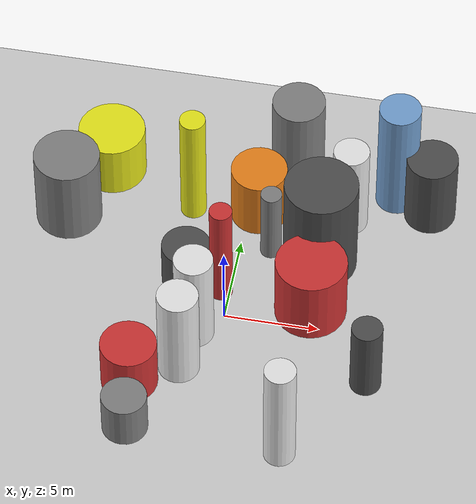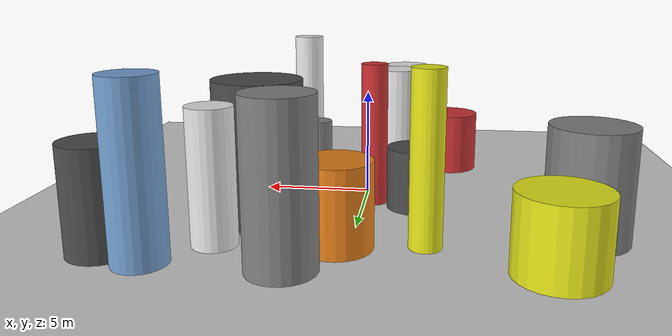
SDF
<?xml version='1.0'?>
<sdf version='1.6'>
  <world name='default'>
    <!-- Sun light -->
    <light name='sun' type='directional'>
      <cast_shadows>1</cast_shadows>
      <pose>0 0 10 0 0 0</pose>
      <diffuse>0.8 0.8 0.8 1</diffuse>
      <specular>0.2 0.2 0.2 1</specular>
      <attenuation>
        <range>1000</range>
        <constant>0.9</constant>
        <linear>0.01</linear>
        <quadratic>0.001</quadratic>
      </attenuation>
      <direction>-0.5 0.1 -0.9</direction>
    </light>

    <!-- Ground plane -->
    <model name='ground_plane'>
      <static>1</static>
      <link name='link'>
        <collision name='collision'>
          <geometry>
            <plane>
              <normal>0 0 1</normal>
              <size>100 100</size>
            </plane>
          </geometry>
          <surface>
            <contact>
              <collide_bitmask>65535</collide_bitmask>
              <ode/>
            </contact>
            <friction>
              <ode>
                <mu>100</mu>
                <mu2>50</mu2>
              </ode>
              <torsional><ode/></torsional>
            </friction>
            <bounce/>
          </surface>
          <max_contacts>10</max_contacts>
        </collision>
        <visual name='visual'>
          <cast_shadows>0</cast_shadows>
          <geometry>
            <plane>
              <normal>0 0 1</normal>
              <size>100 100</size>
            </plane>
          </geometry>
          <material>
            <script>
              <uri>file://media/materials/scripts/gazebo.material</uri>
              <n>Gazebo/Grey</n>
            </script>
          </material>
        </visual>
      </link>
    </model>

    <!-- Environment -->
    <magnetic_field>6e-06 2.3e-05 -4.2e-05</magnetic_field>
    <atmosphere type='adiabatic'/>
    <physics name='default_physics' default='0' type='ode'>
      <gravity>0 0 -9.8</gravity>
      <max_step_size>0.004</max_step_size>
      <real_time_factor>1</real_time_factor>
      <real_time_update_rate>250</real_time_update_rate>
    </physics>
    <scene>
      <ambient>0.4 0.4 0.4 1</ambient>
      <background>0.7 0.7 0.7 1</background>
      <shadows>1</shadows>
    </scene>
    <wind/>
    <spherical_coordinates>
      <surface_model>EARTH_WGS84</surface_model>
      <latitude_deg>0</latitude_deg>
      <longitude_deg>0</longitude_deg>
      <elevation>0</elevation>
      <heading_deg>0</heading_deg>
    </spherical_coordinates>

    <!-- ============ OBSTACLES (19) ============ -->
    <model name='obs_00'>
      <static>1</static>
      <link name='link'>
        <visual name='visual'>
          <geometry>
            <cylinder>
              <radius>1.3732</radius>
              <length>4.4778</length>
            </cylinder>
          </geometry>
          <material>
            <script>
              <n>Gazebo/DarkGrey</n>
              <uri>file://media/materials/scripts/gazebo.material</uri>
            </script>
            <ambient>0.3 0.3 0.3 1</ambient>
          </material>
        </visual>
        <collision name='collision'>
          <geometry>
            <cylinder>
              <radius>1.3732</radius>
              <length>4.4778</length>
            </cylinder>
          </geometry>
          <max_contacts>10</max_contacts>
          <surface>
            <contact><ode/></contact>
            <bounce/>
            <friction>
              <ode><mu>1</mu><mu2>1</mu2></ode>
              <torsional><ode/></torsional>
            </friction>
          </surface>
        </collision>
      </link>
      <pose>9.5552 8.8777 2.2389 0 0 0.3972</pose>
    </model>

    <model name='obs_01'>
      <static>1</static>
      <link name='link'>
        <visual name='visual'>
          <geometry>
            <cylinder>
              <radius>1.3096</radius>
              <length>2.8539</length>
            </cylinder>
          </geometry>
          <material>
            <script>
              <n>Gazebo/DarkGrey</n>
              <uri>file://media/materials/scripts/gazebo.material</uri>
            </script>
            <ambient>0.3 0.3 0.3 1</ambient>
          </material>
        </visual>
        <collision name='collision'>
          <geometry>
            <cylinder>
              <radius>1.3096</radius>
              <length>2.8539</length>
            </cylinder>
          </geometry>
          <max_contacts>10</max_contacts>
          <surface>
            <contact><ode/></contact>
            <bounce/>
            <friction>
              <ode><mu>1</mu><mu2>1</mu2></ode>
              <torsional><ode/></torsional>
            </friction>
          </surface>
        </collision>
      </link>
      <pose>-2.4141 2.0592 1.4270 0 0 2.0914</pose>
    </model>

    <model name='obs_02'>
      <static>1</static>
      <link name='link'>
        <visual name='visual'>
          <geometry>
            <cylinder>
              <radius>1.7641</radius>
              <length>4.7992</length>
            </cylinder>
          </geometry>
          <material>
            <script>
              <n>Gazebo/Grey</n>
              <uri>file://media/materials/scripts/gazebo.material</uri>
            </script>
            <ambient>0.5 0.5 0.5 1</ambient>
          </material>
        </visual>
        <collision name='collision'>
          <geometry>
            <cylinder>
              <radius>1.7641</radius>
              <length>4.7992</length>
            </cylinder>
          </geometry>
          <max_contacts>10</max_contacts>
          <surface>
            <contact><ode/></contact>
            <bounce/>
            <friction>
              <ode><mu>1</mu><mu2>1</mu2></ode>
              <torsional><ode/></torsional>
            </friction>
          </surface>
        </collision>
      </link>
      <pose>-9.4757 5.3774 2.3996 0 0 0.8717</pose>
    </model>

    <model name='obs_03'>
      <static>1</static>
      <link name='link'>
        <visual name='visual'>
          <geometry>
            <cylinder>
              <radius>0.9627</radius>
              <length>5.6735</length>
            </cylinder>
          </geometry>
          <material>
            <script>
              <n>Gazebo/White</n>
              <uri>file://media/materials/scripts/gazebo.material</uri>
            </script>
            <ambient>0.9 0.9 0.9 1</ambient>
          </material>
        </visual>
        <collision name='collision'>
          <geometry>
            <cylinder>
              <radius>0.9627</radius>
              <length>5.6735</length>
            </cylinder>
          </geometry>
          <max_contacts>10</max_contacts>
          <surface>
            <contact><ode/></contact>
            <bounce/>
            <friction>
              <ode><mu>1</mu><mu2>1</mu2></ode>
              <torsional><ode/></torsional>
            </friction>
          </surface>
        </collision>
      </link>
      <pose>5.4019 7.5992 2.8368 0 0 1.9987</pose>
    </model>

    <model name='obs_04'>
      <static>1</static>
      <link name='link'>
        <visual name='visual'>
          <geometry>
            <cylinder>
              <radius>1.0449</radius>
              <length>5.9889</length>
            </cylinder>
          </geometry>
          <material>
            <script>
              <n>Gazebo/White</n>
              <uri>file://media/materials/scripts/gazebo.material</uri>
            </script>
            <ambient>0.9 0.9 0.9 1</ambient>
          </material>
        </visual>
        <collision name='collision'>
          <geometry>
            <cylinder>
              <radius>1.0449</radius>
              <length>5.9889</length>
            </cylinder>
          </geometry>
          <max_contacts>10</max_contacts>
          <surface>
            <contact><ode/></contact>
            <bounce/>
            <friction>
              <ode><mu>1</mu><mu2>1</mu2></ode>
              <torsional><ode/></torsional>
            </friction>
          </surface>
        </collision>
      </link>
      <pose>-1.3487 -1.3257 2.9944 0 0 0.0029</pose>
    </model>

    <model name='obs_05'>
      <static>1</static>
      <link name='link'>
        <visual name='visual'>
          <geometry>
            <cylinder>
              <radius>1.0923</radius>
              <length>5.9044</length>
            </cylinder>
          </geometry>
          <material>
            <script>
              <n>Gazebo/White</n>
              <uri>file://media/materials/scripts/gazebo.material</uri>
            </script>
            <ambient>0.9 0.9 0.9 1</ambient>
          </material>
        </visual>
        <collision name='collision'>
          <geometry>
            <cylinder>
              <radius>1.0923</radius>
              <length>5.9044</length>
            </cylinder>
          </geometry>
          <max_contacts>10</max_contacts>
          <surface>
            <contact><ode/></contact>
            <bounce/>
            <friction>
              <ode><mu>1</mu><mu2>1</mu2></ode>
              <torsional><ode/></torsional>
            </friction>
          </surface>
        </collision>
      </link>
      <pose>-1.7035 -3.7028 2.9522 0 0 1.0024</pose>
    </model>

    <model name='obs_06'>
      <static>1</static>
      <link name='link'>
        <visual name='visual'>
          <geometry>
            <cylinder>
              <radius>0.5679</radius>
              <length>4.5979</length>
            </cylinder>
          </geometry>
          <material>
            <script>
              <n>Gazebo/Grey</n>
              <uri>file://media/materials/scripts/gazebo.material</uri>
            </script>
            <ambient>0.5 0.5 0.5 1</ambient>
          </material>
        </visual>
        <collision name='collision'>
          <geometry>
            <cylinder>
              <radius>0.5679</radius>
              <length>4.5979</length>
            </cylinder>
          </geometry>
          <max_contacts>10</max_contacts>
          <surface>
            <contact><ode/></contact>
            <bounce/>
            <friction>
              <ode><mu>1</mu><mu2>1</mu2></ode>
              <torsional><ode/></torsional>
            </friction>
          </surface>
        </collision>
      </link>
      <pose>1.6157 4.8582 2.2989 0 0 1.0844</pose>
    </model>

    <model name='obs_07'>
      <static>1</static>
      <link name='link'>
        <visual name='visual'>
          <geometry>
            <cylinder>
              <radius>1.1238</radius>
              <length>7.1853</length>
            </cylinder>
          </geometry>
          <material>
            <script>
              <n>Gazebo/Blue</n>
              <uri>file://media/materials/scripts/gazebo.material</uri>
            </script>
            <ambient>0.447 0.624 0.812 1</ambient>
          </material>
        </visual>
        <collision name='collision'>
          <geometry>
            <cylinder>
              <radius>1.1238</radius>
              <length>7.1853</length>
            </cylinder>
          </geometry>
          <max_contacts>10</max_contacts>
          <surface>
            <contact><ode/></contact>
            <bounce/>
            <friction>
              <ode><mu>1</mu><mu2>1</mu2></ode>
              <torsional><ode/></torsional>
            </friction>
          </surface>
        </collision>
      </link>
      <pose>7.6256 9.6706 3.5927 0 0 2.6009</pose>
    </model>

    <model name='obs_08'>
      <static>1</static>
      <link name='link'>
        <visual name='visual'>
          <geometry>
            <cylinder>
              <radius>1.1948</radius>
              <length>2.5772</length>
            </cylinder>
          </geometry>
          <material>
            <script>
              <n>Gazebo/Grey</n>
              <uri>file://media/materials/scripts/gazebo.material</uri>
            </script>
            <ambient>0.5 0.5 0.5 1</ambient>
          </material>
        </visual>
        <collision name='collision'>
          <geometry>
            <cylinder>
              <radius>1.1948</radius>
              <length>2.5772</length>
            </cylinder>
          </geometry>
          <max_contacts>10</max_contacts>
          <surface>
            <contact><ode/></contact>
            <bounce/>
            <friction>
              <ode><mu>1</mu><mu2>1</mu2></ode>
              <torsional><ode/></torsional>
            </friction>
          </surface>
        </collision>
      </link>
      <pose>-3.6844 -7.9873 1.2886 0 0 2.1261</pose>
    </model>

    <model name='obs_09'>
      <static>1</static>
      <link name='link'>
        <visual name='visual'>
          <geometry>
            <cylinder>
              <radius>0.8214</radius>
              <length>4.5938</length>
            </cylinder>
          </geometry>
          <material>
            <script>
              <n>Gazebo/DarkGrey</n>
              <uri>file://media/materials/scripts/gazebo.material</uri>
            </script>
            <ambient>0.3 0.3 0.3 1</ambient>
          </material>
        </visual>
        <collision name='collision'>
          <geometry>
            <cylinder>
              <radius>0.8214</radius>
              <length>4.5938</length>
            </cylinder>
          </geometry>
          <max_contacts>10</max_contacts>
          <surface>
            <contact><ode/></contact>
            <bounce/>
            <friction>
              <ode><mu>1</mu><mu2>1</mu2></ode>
              <torsional><ode/></torsional>
            </friction>
          </surface>
        </collision>
      </link>
      <pose>8.0029 -3.0197 2.2969 0 0 2.4861</pose>
    </model>

    <model name='obs_10'>
      <static>1</static>
      <link name='link'>
        <visual name='visual'>
          <geometry>
            <cylinder>
              <radius>1.9022</radius>
              <length>3.9849</length>
            </cylinder>
          </geometry>
          <material>
            <script>
              <n>Gazebo/Red</n>
              <uri>file://media/materials/scripts/gazebo.material</uri>
            </script>
            <ambient>0.8 0.2 0.2 1</ambient>
          </material>
        </visual>
        <collision name='collision'>
          <geometry>
            <cylinder>
              <radius>1.9022</radius>
              <length>3.9849</length>
            </cylinder>
          </geometry>
          <max_contacts>10</max_contacts>
          <surface>
            <contact><ode/></contact>
            <bounce/>
            <friction>
              <ode><mu>1</mu><mu2>1</mu2></ode>
              <torsional><ode/></torsional>
            </friction>
          </surface>
        </collision>
      </link>
      <pose>4.3859 1.2274 1.9925 0 0 1.4252</pose>
    </model>

    <model name='obs_11'>
      <static>1</static>
      <link name='link'>
        <visual name='visual'>
          <geometry>
            <cylinder>
              <radius>0.8269</radius>
              <length>6.9389</length>
            </cylinder>
          </geometry>
          <material>
            <script>
              <n>Gazebo/White</n>
              <uri>file://media/materials/scripts/gazebo.material</uri>
            </script>
            <ambient>0.9 0.9 0.9 1</ambient>
          </material>
        </visual>
        <collision name='collision'>
          <geometry>
            <cylinder>
              <radius>0.8269</radius>
              <length>6.9389</length>
            </cylinder>
          </geometry>
          <max_contacts>10</max_contacts>
          <surface>
            <contact><ode/></contact>
            <bounce/>
            <friction>
              <ode><mu>1</mu><mu2>1</mu2></ode>
              <torsional><ode/></torsional>
            </friction>
          </surface>
        </collision>
      </link>
      <pose>4.4205 -8.2671 3.4695 0 0 1.6754</pose>
    </model>

    <model name='obs_12'>
      <static>1</static>
      <link name='link'>
        <visual name='visual'>
          <geometry>
            <cylinder>
              <radius>1.9634</radius>
              <length>6.2648</length>
            </cylinder>
          </geometry>
          <material>
            <script>
              <n>Gazebo/DarkGrey</n>
              <uri>file://media/materials/scripts/gazebo.material</uri>
            </script>
            <ambient>0.3 0.3 0.3 1</ambient>
          </material>
        </visual>
        <collision name='collision'>
          <geometry>
            <cylinder>
              <radius>1.9634</radius>
              <length>6.2648</length>
            </cylinder>
          </geometry>
          <max_contacts>10</max_contacts>
          <surface>
            <contact><ode/></contact>
            <bounce/>
            <friction>
              <ode><mu>1</mu><mu2>1</mu2></ode>
              <torsional><ode/></torsional>
            </friction>
          </surface>
        </collision>
      </link>
      <pose>4.3080 4.5548 3.1324 0 0 2.5441</pose>
    </model>

    <model name='obs_13'>
      <static>1</static>
      <link name='link'>
        <visual name='visual'>
          <geometry>
            <cylinder>
              <radius>1.4120</radius>
              <length>6.6193</length>
            </cylinder>
          </geometry>
          <material>
            <script>
              <n>Gazebo/Grey</n>
              <uri>file://media/materials/scripts/gazebo.material</uri>
            </script>
            <ambient>0.5 0.5 0.5 1</ambient>
          </material>
        </visual>
        <collision name='collision'>
          <geometry>
            <cylinder>
              <radius>1.4120</radius>
              <length>6.6193</length>
            </cylinder>
          </geometry>
          <max_contacts>10</max_contacts>
          <surface>
            <contact><ode/></contact>
            <bounce/>
            <friction>
              <ode><mu>1</mu><mu2>1</mu2></ode>
              <torsional><ode/></torsional>
            </friction>
          </surface>
        </collision>
      </link>
      <pose>2.2167 9.6929 3.3097 0 0 1.0120</pose>
    </model>

    <model name='obs_14'>
      <static>1</static>
      <link name='link'>
        <visual name='visual'>
          <geometry>
            <cylinder>
              <radius>1.7976</radius>
              <length>3.2164</length>
            </cylinder>
          </geometry>
          <material>
            <script>
              <n>Gazebo/Yellow</n>
              <uri>file://media/materials/scripts/gazebo.material</uri>
            </script>
            <ambient>0.9 0.9 0.1 1</ambient>
          </material>
        </visual>
        <collision name='collision'>
          <geometry>
            <cylinder>
              <radius>1.7976</radius>
              <length>3.2164</length>
            </cylinder>
          </geometry>
          <max_contacts>10</max_contacts>
          <surface>
            <contact><ode/></contact>
            <bounce/>
            <friction>
              <ode><mu>1</mu><mu2>1</mu2></ode>
              <torsional><ode/></torsional>
            </friction>
          </surface>
        </collision>
      </link>
      <pose>-7.8151 8.9673 1.6082 0 0 1.8074</pose>
    </model>

    <model name='obs_15'>
      <static>1</static>
      <link name='link'>
        <visual name='visual'>
          <geometry>
            <cylinder>
              <radius>0.6061</radius>
              <length>6.6106</length>
            </cylinder>
          </geometry>
          <material>
            <script>
              <n>Gazebo/Red</n>
              <uri>file://media/materials/scripts/gazebo.material</uri>
            </script>
            <ambient>0.8 0.2 0.2 1</ambient>
          </material>
        </visual>
        <collision name='collision'>
          <geometry>
            <cylinder>
              <radius>0.6061</radius>
              <length>6.6106</length>
            </cylinder>
          </geometry>
          <max_contacts>10</max_contacts>
          <surface>
            <contact><ode/></contact>
            <bounce/>
            <friction>
              <ode><mu>1</mu><mu2>1</mu2></ode>
              <torsional><ode/></torsional>
            </friction>
          </surface>
        </collision>
      </link>
      <pose>-0.4677 1.5955 3.3053 0 0 1.9316</pose>
    </model>

    <model name='obs_16'>
      <static>1</static>
      <link name='link'>
        <visual name='visual'>
          <geometry>
            <cylinder>
              <radius>1.5079</radius>
              <length>3.5994</length>
            </cylinder>
          </geometry>
          <material>
            <script>
              <n>Gazebo/Orange</n>
              <uri>file://media/materials/scripts/gazebo.material</uri>
            </script>
            <ambient>0.9 0.5 0.1 1</ambient>
          </material>
        </visual>
        <collision name='collision'>
          <geometry>
            <cylinder>
              <radius>1.5079</radius>
              <length>3.5994</length>
            </cylinder>
          </geometry>
          <max_contacts>10</max_contacts>
          <surface>
            <contact><ode/></contact>
            <bounce/>
            <friction>
              <ode><mu>1</mu><mu2>1</mu2></ode>
              <torsional><ode/></torsional>
            </friction>
          </surface>
        </collision>
      </link>
      <pose>0.5298 7.2972 1.7997 0 0 1.6998</pose>
    </model>

    <model name='obs_17'>
      <static>1</static>
      <link name='link'>
        <visual name='visual'>
          <geometry>
            <cylinder>
              <radius>0.6873</radius>
              <length>7.2099</length>
            </cylinder>
          </geometry>
          <material>
            <script>
              <n>Gazebo/Yellow</n>
              <uri>file://media/materials/scripts/gazebo.material</uri>
            </script>
            <ambient>0.9 0.9 0.1 1</ambient>
          </material>
        </visual>
        <collision name='collision'>
          <geometry>
            <cylinder>
              <radius>0.6873</radius>
              <length>7.2099</length>
            </cylinder>
          </geometry>
          <max_contacts>10</max_contacts>
          <surface>
            <contact><ode/></contact>
            <bounce/>
            <friction>
              <ode><mu>1</mu><mu2>1</mu2></ode>
              <torsional><ode/></torsional>
            </friction>
          </surface>
        </collision>
      </link>
      <pose>-2.9777 6.9328 3.6049 0 0 0.1789</pose>
    </model>

    <model name='obs_18'>
      <static>1</static>
      <link name='link'>
        <visual name='visual'>
          <geometry>
            <cylinder>
              <radius>1.4832</radius>
              <length>3.0806</length>
            </cylinder>
          </geometry>
          <material>
            <script>
              <n>Gazebo/Red</n>
              <uri>file://media/materials/scripts/gazebo.material</uri>
            </script>
            <ambient>0.8 0.2 0.2 1</ambient>
          </material>
        </visual>
        <collision name='collision'>
          <geometry>
            <cylinder>
              <radius>1.4832</radius>
              <length>3.0806</length>
            </cylinder>
          </geometry>
          <max_contacts>10</max_contacts>
          <surface>
            <contact><ode/></contact>
            <bounce/>
            <friction>
              <ode><mu>1</mu><mu2>1</mu2></ode>
              <torsional><ode/></torsional>
            </friction>
          </surface>
        </collision>
      </link>
      <pose>-4.0476 -5.0498 1.5403 0 0 0.7052</pose>
    </model>

    <!-- GUI camera -->
    <gui fullscreen='0'>
      <camera name='user_camera'>
        <pose>-15 0 18 0 0.85 0.15</pose>
        <view_controller>orbit</view_controller>
        <projection_type>perspective</projection_type>
      </camera>
    </gui>
  </world>
</sdf>
